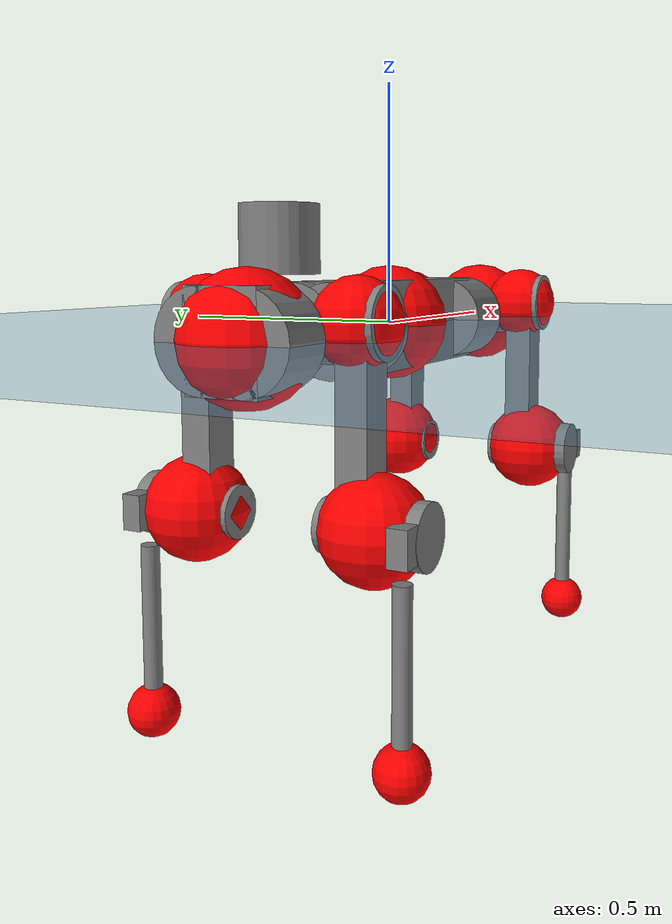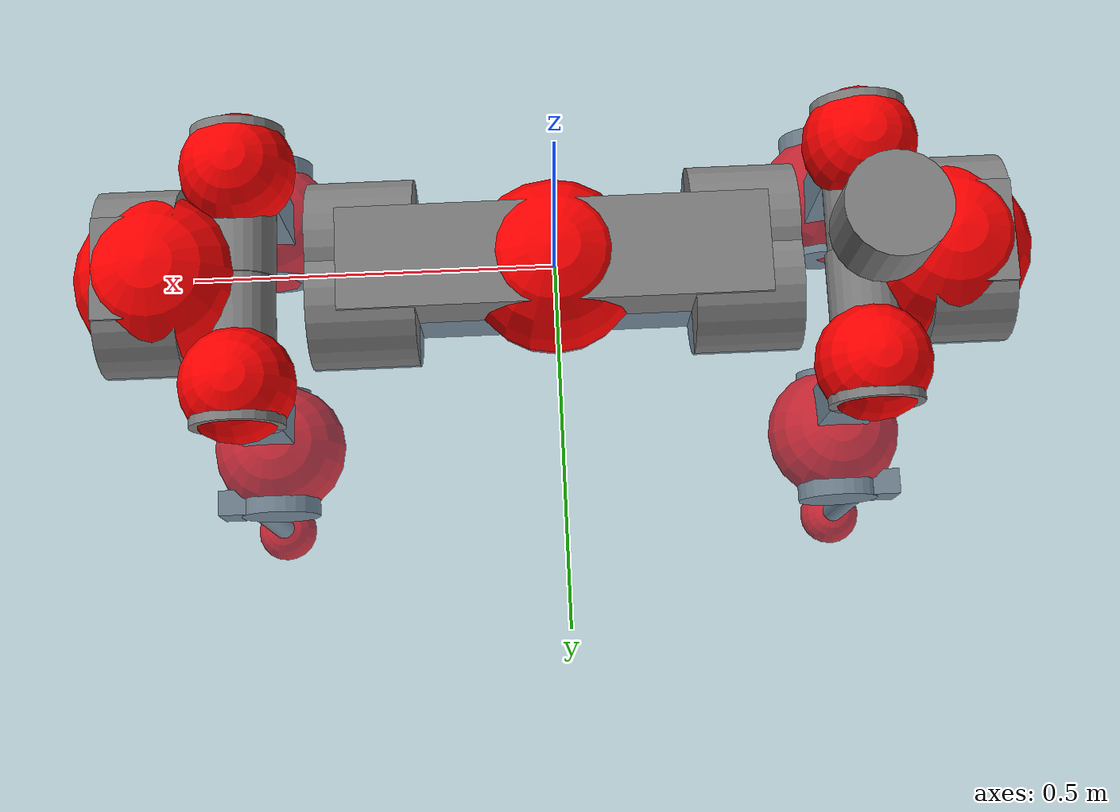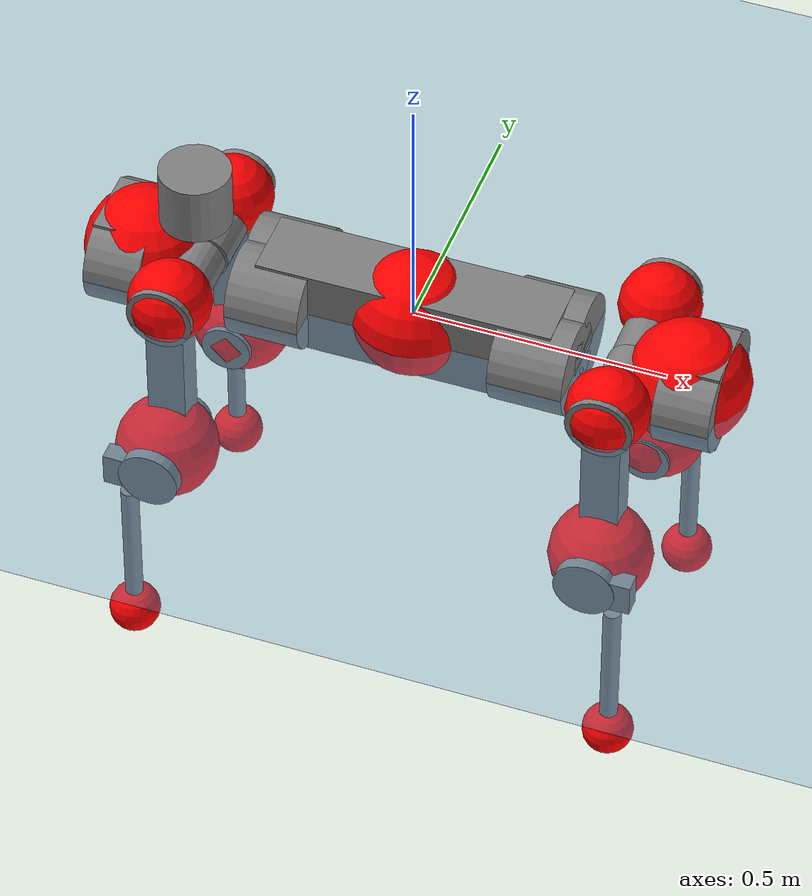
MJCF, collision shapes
<mujoco model="anymal_c">
  <compiler angle="radian" assetdir="assets" balanceinertia="true" inertiafromgeom="false"/>

  <option timestep="0.005" density="1.2" viscosity="2e-05"/>

  <size nkey="1"/>

  <visual>
    <quality shadowsize="8192"/>
    <map shadowclip="0.5"/>
  </visual>

  <default>
    <default class="/">
      <material specular="0" shininess="0.25"/>
      <geom contype="0" conaffinity="0" group="1" solref="-1000 -80"/>
      <site size="0.01 0.005 0.005" group="5"/>
      <general forcelimited="true" forcerange="-80 80" biastype="affine" gainprm="80" biasprm="0 -80 -2"/>
      <default class="anymal_c">
        <joint armature="0.01" damping="0.01" frictionloss="0.1"/>
        <default class="visual">
          <geom type="mesh" group="2"/>
          <default class="visual_zflip"/>
        </default>
        <default class="collision">
          <geom type="cylinder" group="3"/>
          <default class="foot">
            <geom size="0.03 0 0" type="sphere" condim="6" priority="1" friction="0.8 0.02 0.01" solimp="0.015 1 0.03"/>
          </default>
        </default>
      </default>
      <default class="reward_collision_sphere">
        <geom group="5" rgba="1 0 0 1"/>
      </default>
    </default>
  </default>

  <asset>
    <texture type="skybox" colorspace="auto" name="//unnamed_texture_0" builtin="gradient" rgb1="0.95 0.95 0.95" rgb2="0.95 0.95 0.95" width="100" height="600"/>
    <texture type="2d" colorspace="auto" name="texplane" builtin="checker" rgb1="0.345 0.575 0.748" rgb2="0.345 0.575 0.748" markrgb="1 1 1" width="512" height="512"/>
    <texture type="2d" colorspace="linear" name="base" file="base.png"/>
    <texture type="2d" colorspace="linear" name="top_shell" file="top_shell.png"/>
    <texture type="2d" colorspace="linear" name="bottom_shell" file="bottom_shell.png"/>
    <texture type="2d" colorspace="linear" name="remote" file="remote.png"/>
    <texture type="2d" colorspace="linear" name="hatch" file="hatch.png"/>
    <texture type="2d" colorspace="linear" name="handle" file="handle.png"/>
    <texture type="2d" colorspace="linear" name="face" file="face.png"/>
    <texture type="2d" colorspace="linear" name="battery" file="battery.png"/>
    <texture type="2d" colorspace="linear" name="lidar_cage" file="lidar_cage.png"/>
    <texture type="2d" colorspace="linear" name="depth_camera" file="depth_camera.png"/>
    <texture type="2d" colorspace="linear" name="wide_angle_camera" file="wide_angle_camera.png"/>
    <texture type="2d" colorspace="linear" name="lidar" file="lidar.png"/>
    <texture type="2d" colorspace="linear" name="drive" file="drive.png"/>
    <texture type="2d" colorspace="linear" name="hip_l" file="hip_l.png"/>
    <texture type="2d" colorspace="linear" name="shank_l" file="shank_l.png"/>
    <texture type="2d" colorspace="linear" name="foot" file="foot.png"/>
    <texture type="2d" colorspace="linear" name="thigh" file="thigh.png"/>
    <texture type="2d" colorspace="linear" name="shank_r" file="shank_r.png"/>
    <texture type="2d" colorspace="linear" name="hip_r" file="hip_r.png"/>
    <material name="MatPlane" class="/" texture="texplane" texuniform="true" texrepeat="2 2" specular="0.9" shininess="0.5"/>
    <material name="black_plastic" class="/" rgba="0.007 0.007 0.007 1"/>
    <material name="green" class="/" rgba="0.052 0.178 0.033 1"/>
    <material name="red" class="/" rgba="0.178 0.006 0.005 1"/>
    <material name="yellow" class="/" rgba="0.178 0.119 0.006 1"/>
    <material name="lwl" class="/" rgba="0.8 0.8 0.8 1"/>
    <material name="base" class="/" texture="base"/>
    <material name="top_shell" class="/" texture="top_shell"/>
    <material name="bottom_shell" class="/" texture="bottom_shell"/>
    <material name="hip_l" class="/" texture="hip_l"/>
    <material name="thigh" class="/" texture="thigh"/>
    <material name="shank_l" class="/" texture="shank_l"/>
    <material name="foot" class="/" texture="foot"/>
    <material name="hip_r" class="/" texture="hip_r"/>
    <material name="shank" class="/" texture="shank_r"/>
    <material name="hatch" class="/" texture="hatch"/>
    <material name="remote" class="/" texture="remote"/>
    <material name="handle" class="/" texture="handle"/>
    <material name="face" class="/" texture="face"/>
    <material name="depth_camera" class="/" texture="depth_camera"/>
    <material name="wide_angle_camera" class="/" texture="wide_angle_camera"/>
    <material name="battery" class="/" texture="battery"/>
    <material name="lidar_cage" class="/" texture="lidar_cage"/>
    <material name="lidar" class="/" texture="lidar"/>
    <material name="drive" class="/" texture="drive"/>
    <mesh name="base_0" class="/" file="base_0.obj"/>
    <mesh name="base_1" class="/" file="base_1.obj"/>
    <mesh name="base_2" class="/" file="base_2.obj"/>
    <mesh name="base_3" class="/" file="base_3.obj"/>
    <mesh name="base_4" class="/" file="base_4.obj"/>
    <mesh name="base_5" class="/" file="base_5.obj"/>
    <mesh name="top_shell" class="/" file="top_shell.obj"/>
    <mesh name="bottom_shell" class="/" file="bottom_shell.obj"/>
    <mesh name="remote" class="/" file="remote.obj"/>
    <mesh name="handle" class="/" file="handle.obj"/>
    <mesh name="face" class="/" file="face.obj"/>
    <mesh name="wide_angle_camera" class="/" file="wide_angle_camera.obj"/>
    <mesh name="depth_camera" class="/" file="depth_camera.obj"/>
    <mesh name="battery" class="/" file="battery.obj"/>
    <mesh name="lidar_cage" class="/" file="lidar_cage.obj"/>
    <mesh name="lidar" class="/" file="lidar.obj"/>
    <mesh name="drive" class="/" file="drive.obj"/>
    <mesh name="hip_l" class="/" file="hip_l.obj"/>
    <mesh name="thigh" class="/" file="thigh.obj"/>
    <mesh name="shank_l" class="/" file="shank_l.obj"/>
    <mesh name="foot" class="/" file="foot.obj"/>
    <mesh name="hip_r" class="/" file="hip_r.obj"/>
    <mesh name="hatch" class="/" file="hatch.obj"/>
    <mesh name="shank_r" class="/" file="shank_r.obj"/>
  </asset>

  <worldbody>
    <geom name="floor" class="/" size="100 100 0.125" type="plane" group="0" material="MatPlane"/>
    <light name="toplight_shadow" class="/" pos="0 0 5" dir="0.0990148 0.0990148 -0.990148" type="directional" ambient="0.04 0.04 0.04" diffuse="0.55 0.55 0.55" specular="0.12 0.12 0.12"/>
    <light name="toplight_fill" class="/" pos="0 0 5" dir="0.0990148 0.0990148 -0.990148" type="directional" castshadow="false" ambient="0.04 0.04 0.04" diffuse="0.3 0.3 0.3" specular="0.08 0.08 0.08"/>
    <body name="trunk" childclass="anymal_c" pos="0.00180833 0.00064512 0.00122517" quat="0.999999 3.03806e-05 0.000388184 0.000956686">
      <inertial pos="0.00514577 0.00361585 0.0632746" quat="0.50611 0.496154 0.495919 0.501746" mass="19.9801" diaginertia="1.5436 0.0372099 0.606611"/>
      <joint name="//unnamed_joint_0" type="free" armature="0" damping="0" frictionloss="0"/>
      <geom name="//unnamed_geom_1" class="visual" material="green" mesh="base_0"/>
      <geom name="//unnamed_geom_2" class="visual" material="yellow" mesh="base_1"/>
      <geom name="//unnamed_geom_3" class="visual" material="red" mesh="base_2"/>
      <geom name="//unnamed_geom_4" class="visual" material="black_plastic" mesh="base_3"/>
      <geom name="//unnamed_geom_5" class="visual" material="lwl" mesh="base_4"/>
      <geom name="//unnamed_geom_6" class="visual" material="base" mesh="base_5"/>
      <geom name="trunk_1" class="collision" size="0.293057 0.0707378 0.0909487" type="box"/>
      <geom name="trunk_2" class="collision" size="0.0909487 0.0732642" pos="0.261731 0.0403364 0" quat="0.707107 0 0.707107 0"/>
      <geom name="trunk_3" class="collision" size="0.0909487 0.0732642" pos="-0.261731 0.0403364 0" quat="0.707107 0 0.707107 0"/>
      <geom name="trunk_4" class="collision" size="0.0909487 0.0732642" pos="0.261731 -0.0403364 0" quat="0.707107 0 0.707107 0"/>
      <geom name="trunk_5" class="collision" size="0.0909487 0.0732642" pos="-0.261731 -0.0403364 0" quat="0.707107 0 0.707107 0"/>
      <geom name="//unnamed_geom_12" class="visual" material="top_shell" mesh="top_shell"/>
      <geom name="//unnamed_geom_13" class="visual" material="bottom_shell" mesh="bottom_shell"/>
      <geom name="//unnamed_geom_14" class="visual" material="remote" mesh="remote"/>
      <geom name="//unnamed_geom_15" class="visual" material="handle" mesh="handle"/>
      <geom name="//unnamed_geom_16" class="visual" pos="0.498793 0 0" quat="1 0 0 0" material="face" mesh="face"/>
      <geom name="trunk_6" class="collision" size="0.0555797 0.0707378 0.0909487" pos="0.564977 0 0" type="box"/>
      <geom name="//unnamed_geom_18" class="collision" size="0.0909487 0.0555797" pos="0.564977 0.0403364 0" quat="0.707107 0 0.707107 0"/>
      <geom name="//unnamed_geom_19" class="collision" size="0.0909487 0.0555797" pos="0.564977 -0.0403364 0" quat="0.707107 0 0.707107 0"/>
      <geom name="//unnamed_geom_20" class="visual" pos="0.555533 0 -0.0369291" quat="0.965926 0 0.258819 0" material="depth_camera" mesh="depth_camera"/>
      <geom name="//unnamed_geom_21" class="visual" pos="0.617324 0 0.0187429" material="wide_angle_camera" mesh="wide_angle_camera"/>
      <geom name="//unnamed_geom_22" class="visual_zflip" pos="-0.498793 0 0" quat="0 0 0 1" material="face" mesh="face"/>
      <geom name="trunk_7" class="collision" size="0.0555797 0.0707378 0.0909487" pos="-0.564977 0 0" quat="0 0 0 1" type="box"/>
      <geom name="//unnamed_geom_24" class="collision" size="0.0909487 0.0555797" pos="-0.564977 -0.0403364 0" quat="0 -0.707107 0 0.707107"/>
      <geom name="//unnamed_geom_25" class="collision" size="0.0909487 0.0555797" pos="-0.564977 0.0403364 0" quat="0 -0.707107 0 0.707107"/>
      <geom name="//unnamed_geom_26" class="visual" pos="-0.555533 0 -0.0369291" quat="0 -0.258819 0 0.965926" material="depth_camera" mesh="depth_camera"/>
      <geom name="//unnamed_geom_27" class="visual_zflip" pos="-0.617324 0 0.0187429" quat="0 0 0 1" material="wide_angle_camera" mesh="wide_angle_camera"/>
      <geom name="//unnamed_geom_28" class="visual" material="battery" mesh="battery"/>
      <geom name="//unnamed_geom_29" class="visual" pos="0 0.0358318 0.0360015" quat="0.683013 -0.183013 0.183013 0.683013" material="depth_camera" mesh="depth_camera"/>
      <geom name="//unnamed_geom_30" class="visual" pos="0 -0.0358318 0.0360015" quat="0.683013 0.183013 0.183013 -0.683013" material="depth_camera" mesh="depth_camera"/>
      <geom name="//unnamed_geom_31" class="visual" pos="-0.438023 0 0.092024" quat="1 0 0 0" material="lidar_cage" mesh="lidar_cage"/>
      <geom name="trunk_8" class="collision" size="0.0707378 0.0606324" pos="-0.438023 0 0.167146"/>
      <geom name="//unnamed_geom_33" class="visual" pos="-0.438023 -0.00024638 0.178038" quat="0.707107 0 0 -0.707107" material="lidar" mesh="lidar"/>
      <geom name="//unnamed_geom_34" class="visual" pos="0.360888 0.0601685 -1.16575e-08" quat="0.258819 0.965926 0 0" material="drive" mesh="drive"/>
      <geom name="//unnamed_geom_35" class="visual" pos="0.360888 -0.0601685 1.16575e-08" quat="0.258819 -0.965926 0 0" material="drive" mesh="drive"/>
      <geom name="//unnamed_geom_36" class="visual" pos="-0.360888 0.0601685 1.16575e-08" quat="0 0 0.965926 -0.258819" material="drive" mesh="drive"/>
      <geom name="//unnamed_geom_37" class="visual" pos="-0.360888 -0.0601685 -1.16575e-08" quat="0 0 -0.965926 -0.258819" material="drive" mesh="drive"/>
      <geom name="//unnamed_geom_38" class="visual" pos="0.13959 0 0.091398" quat="1 0 0 0" material="hatch" mesh="hatch"/>
      <geom name="//unnamed_geom_39" class="reward_collision_sphere" size="0.121265"/>
      <geom name="//unnamed_geom_40" class="reward_collision_sphere" size="0.121265" pos="0.541512 0 0"/>
      <geom name="//unnamed_geom_41" class="reward_collision_sphere" size="0.121265" pos="-0.541512 0 0"/>
      <site name="imu" pos="0.327312 -0.00660291 0.040109" size="0.0101054"/>
      <camera name="track" pos="0 -1.15247 0" quat="0.707107 0.707107 0 0" mode="trackcom"/>
      <camera name="ego_camera" pos="0.541512 0 -0.0500811" quat="-0.5 -0.5 0.5 0.5"/>
      <body name="LF_HIP" pos="0.36383 0.0585085 -0.000442851" quat="0.258717 0.965953 -3.74778e-05 -0.000294139">
        <inertial pos="0.0644149 -0.00935946 -0.0118807" quat="-0.127709 0.710083 -0.134357 0.67928" mass="2.98102" diaginertia="0.0154196 0.000310042 0.0102566"/>
        <joint name="LF_HAA" pos="0 0 0" axis="0.999964 -0.00289465 0.00798011" range="-0.749947 0.491706" armature="0.00765426" damping="0.032084" frictionloss="0.0885872"/>
        <geom name="//unnamed_geom_42" class="visual" pos="0 -0.000685758 0.000112635" quat="0.258819 -0.965926 0 0" material="hip_l" mesh="hip_l"/>
        <geom name="//unnamed_geom_43" class="visual" pos="0.0720813 -0.0793248 -0.0507967" quat="0.183013 -0.683013 0.683013 0.183013" material="drive" mesh="drive"/>
        <geom name="//unnamed_geom_44" class="collision" size="0.050527 0.0707378" pos="0.0720812 -0.00689165 -0.00864525" quat="-0.353553 -0.612372 0.612372 -0.353553"/>
        <body name="LF_THIGH" pos="0.0721145 -0.0442176 -0.0534785" quat="0.183701 -0.682728 0.683279 0.182389">
          <inertial pos="0.0385327 0.000813908 -0.311658" quat="0.993198 -0.0101953 -0.07277 0.0903224" mass="3.20566" diaginertia="0.0815398 0.00192455 0.0126866"/>
          <joint name="LF_HFE" pos="0 0 0" axis="0.999626 0.00807574 0.0261239" stiffness="0.0118794" range="-3.19306 3.18982" armature="0.0112025" damping="0" frictionloss="0.119088"/>
          <geom name="//unnamed_geom_45" class="visual" pos="0.0124773 1.96613e-05 0" quat="0.707107 0 0 -0.707107" material="thigh" mesh="thigh"/>
          <geom name="//unnamed_geom_46" class="collision" size="0.0656851 0.0404216" pos="0.0481344 0 0" quat="0.5 0.5 -0.5 -0.5"/>
          <geom name="//unnamed_geom_47" class="collision" size="0.0378953 0.0303162 0.142804" pos="0.0361008 0 -0.176929" quat="0.707107 0 0 -0.707107" type="box"/>
          <geom name="//unnamed_geom_48" class="visual" pos="0.120697 0 -0.356828" quat="1 0 0 0" material="drive" mesh="drive"/>
          <geom name="//unnamed_geom_49" class="collision" size="0.050527 0.0707378" pos="0.0364618 0 -0.356828" quat="0.707107 0 0.707107 0"/>
          <geom name="//unnamed_geom_50" class="reward_collision_sphere" size="0.0808433" pos="0.030084 0 0"/>
          <body name="LF_SHANK" pos="0.118093 0.00281497 -0.351332" quat="0.999999 -0.000308872 0.000313764 -0.00118285">
            <inertial pos="0.0043004 -0.0356102 -0.103254" quat="0.991574 -0.127207 -0.00305168 -0.0242721" mass="0.598663" diaginertia="0.0256703 0.000590904 0.00332798"/>
            <joint name="LF_KFE" pos="0 0 0" axis="0.999959 -0.000441745 -0.00901279" range="-3.12281 3.16887" armature="0.0104471" damping="0.0211761" frictionloss="0.0982268"/>
            <geom name="//unnamed_geom_51" class="visual" pos="0.00406858 0.0216939 0" quat="0.707107 0 0 -0.707107" material="shank_l" mesh="shank_l"/>
            <geom name="LF_kfe_act" class="collision" size="0.0606324 0.0202108" pos="0.0240672 0 0" quat="0.5 0.5 -0.5 -0.5"/>
            <geom name="//unnamed_geom_53" class="collision" size="0.0581051 0.0341057 0.0192003" pos="0.0240672 -0.0331329 0" quat="0.5 0.5 -0.5 -0.5" type="box"/>
            <geom name="//unnamed_geom_54" class="visual" pos="0.0157029 -0.0436888 -0.423148" quat="0.382683 0 0 -0.92388" material="foot" mesh="foot"/>
            <geom name="LF_calf" class="collision" size="0.0176845 0.142741" pos="0.0157038 -0.0506799 -0.211574" quat="0.707107 0 0 -0.707107"/>
            <geom name="LF_foot" class="foot" size="0.0260963" pos="0.0157038 -0.0506799 -0.394977" quat="0.707107 0 0 -0.707107"/>
            <geom name="//unnamed_geom_57" class="reward_collision_sphere" size="0.101054" pos="-0.060168 0 0"/>
            <geom name="//unnamed_geom_58" class="reward_collision_sphere" size="0.050527" pos="0.0157038 -0.0506799 -0.394977"/>
            <site name="LF_foot" class="foot" pos="0.0157038 -0.0506799 -0.394977" quat="0.707107 0 0 -0.707107" size="0.0101054"/>
          </body>
        </body>
      </body>
      <body name="RF_HIP" pos="0.361808 -0.0602237 0.00172236" quat="0.258539 -0.966001 6.40531e-05 -0.0002037">
        <inertial pos="0.0648847 0.00728924 -0.00885365" quat="0.134384 0.679292 0.127579 0.710089" mass="2.76815" diaginertia="0.014489 0.00031093 0.0100439"/>
        <joint name="RF_HAA" pos="0 0 0" axis="0.999956 0.00104366 -0.00934834" range="-0.410916 0.766023" armature="0.0117979" damping="0.0140298" frictionloss="0.119681"/>
        <geom name="//unnamed_geom_59" class="visual" pos="0 0.000685752 0.000112635" quat="0.258819 0.965926 0 0" material="hip_r" mesh="hip_r"/>
        <geom name="//unnamed_geom_60" class="visual" pos="0.0720812 0.0793248 -0.0507967" quat="0.183013 0.683013 0.683013 -0.183013" material="drive" mesh="drive"/>
        <geom name="//unnamed_geom_61" class="collision" size="0.050527 0.0707378" pos="0.0720812 0.00689165 -0.00864525" quat="-0.353553 0.612372 0.612372 0.353553"/>
        <body name="RF_THIGH" pos="0.0711211 0.0374479 -0.0534816" quat="0.18371 0.682676 0.683305 -0.18248">
          <inertial pos="0.0378172 0.00244422 -0.309606" quat="0.991073 -0.0142835 -0.0856819 0.101141" mass="3.43496" diaginertia="0.0800954 0.00193275 0.0133514"/>
          <joint name="RF_HFE" pos="0 0 0" axis="0.999944 0.010463 0.00129426" stiffness="0.00444563" range="-3.24957 3.1229" armature="0.00974559" damping="0.0143865" frictionloss="0.0680105"/>
          <geom name="//unnamed_geom_62" class="visual" pos="0.0124773 1.96613e-05 0" quat="0.707107 0 0 -0.707107" material="thigh" mesh="thigh"/>
          <geom name="//unnamed_geom_63" class="collision" size="0.0656851 0.0404216" pos="0.0481344 0 0" quat="0.5 0.5 0.5 0.5"/>
          <geom name="//unnamed_geom_64" class="collision" size="0.0378953 0.0303162 0.142804" pos="0.0361008 0 -0.176929" quat="0.707107 0 0 0.707107" type="box"/>
          <geom name="//unnamed_geom_65" class="visual" pos="0.120697 0 -0.356828" quat="1 0 0 0" material="drive" mesh="drive"/>
          <geom name="//unnamed_geom_66" class="collision" size="0.050527 0.0707378" pos="0.0364618 0 -0.356828" quat="0.707107 0 0.707107 0"/>
          <geom name="//unnamed_geom_67" class="reward_collision_sphere" size="0.0808433" pos="0.030084 0 0"/>
          <body name="RF_SHANK" pos="0.117128 0.00446072 -0.354936" quat="1 -0.000332236 0.00066647 0.000222921">
            <inertial pos="0.00760251 0.0341883 -0.105278" quat="0.992938 0.115935 -0.00107834 0.0251459" mass="0.592026" diaginertia="0.0274729 0.000607753 0.00351169"/>
            <joint name="RF_KFE" pos="0 0 0" axis="1 -0.000170186 -0.000779628" range="-3.13555 3.12644" armature="0.00909173" damping="0.0186345" frictionloss="0.126323"/>
            <geom name="//unnamed_geom_68" class="visual" pos="0.00406856 -0.0216938 0" quat="0.707107 0 0 0.707107" material="shank" mesh="shank_r"/>
            <geom name="RF_kfe_act" class="collision" size="0.0606324 0.0202108" pos="0.0240672 0 0" quat="0.5 0.5 0.5 0.5"/>
            <geom name="//unnamed_geom_70" class="collision" size="0.0581051 0.0341057 0.0192003" pos="0.0240672 0.0331329 0" quat="0.5 0.5 0.5 0.5" type="box"/>
            <geom name="//unnamed_geom_71" class="visual" pos="0.0157048 0.0436888 -0.423148" quat="0.382683 0 0 0.92388" material="foot" mesh="foot"/>
            <geom name="RF_calf" class="collision" size="0.0176845 0.142741" pos="0.0157038 0.0506799 -0.211574" quat="0.707107 0 0 0.707107"/>
            <geom name="RF_foot" class="foot" size="0.0374812" pos="0.0157038 0.0506799 -0.394977" quat="0.707107 0 0 0.707107"/>
            <geom name="//unnamed_geom_74" class="reward_collision_sphere" size="0.101054" pos="-0.060168 0 0"/>
            <geom name="//unnamed_geom_75" class="reward_collision_sphere" size="0.050527" pos="0.0157038 0.0506799 -0.394977"/>
            <site name="RF_foot" class="foot" pos="0.0157038 0.0506799 -0.394977" quat="0.707107 0 0 0.707107" size="0.0101054"/>
          </body>
        </body>
      </body>
      <body name="LH_HIP" pos="-0.35552 0.061484 0.00215693" quat="0.00103118 0.000223944 0.966112 -0.258121">
        <inertial pos="0.0693434 0.00472784 -0.00920452" quat="0.135207 0.679195 0.126274 0.710259" mass="2.91197" diaginertia="0.0150009 0.000303847 0.0109823"/>
        <joint name="LH_HAA" pos="0 0 0" axis="0.99995 -0.00511369 0.00863602" range="-0.460277 0.851511" armature="0.0122192" damping="0.00388786" frictionloss="0.0966707"/>
        <geom name="//unnamed_geom_76" class="visual" pos="0 0.000685752 0.000112635" quat="-0.258819 -0.965926 0 0" material="hip_r" mesh="hip_r"/>
        <geom name="//unnamed_geom_77" class="visual" pos="0.0720812 0.0793248 -0.0507967" quat="0.183013 0.683013 0.683013 -0.183013" material="drive" mesh="drive"/>
        <geom name="//unnamed_geom_78" class="collision" size="0.050527 0.0707378" pos="0.0720812 0.00689165 -0.00864525" quat="-0.353553 0.612372 0.612372 0.353553"/>
        <body name="LH_THIGH" pos="0.0726009 0.0481209 -0.0556744" quat="0.18322 0.682895 0.683087 -0.182968">
          <inertial pos="0.0374184 -0.00258187 -0.30977" quat="0.993197 -0.0116264 -0.0805189 0.0833118" mass="3.17087" diaginertia="0.0766245 0.00191266 0.0132579"/>
          <joint name="LH_HFE" pos="0 0 0" axis="0.999908 0.0101623 0.00903532" range="-3.15178 3.09714" armature="0.00978737" damping="0.00131257" frictionloss="0.110171"/>
          <geom name="//unnamed_geom_79" class="visual" pos="0.0124773 1.96613e-05 0" quat="0.707107 0 0 -0.707107" material="thigh" mesh="thigh"/>
          <geom name="//unnamed_geom_80" class="collision" size="0.0656851 0.0404216" pos="0.0481344 0 0" quat="0.5 0.5 -0.5 -0.5"/>
          <geom name="//unnamed_geom_81" class="collision" size="0.0378953 0.0303162 0.142804" pos="0.0361008 0 -0.176929" quat="0.707107 0 0 -0.707107" type="box"/>
          <geom name="//unnamed_geom_82" class="visual" pos="0.120697 0 -0.356828" quat="1 0 0 0" material="drive" mesh="drive"/>
          <geom name="//unnamed_geom_83" class="collision" size="0.050527 0.0707378" pos="0.0364618 0 -0.356828" quat="0.707107 0 0.707107 0"/>
          <geom name="//unnamed_geom_84" class="reward_collision_sphere" size="0.0808433" pos="0.030084 0 0"/>
          <body name="LH_SHANK" pos="0.121656 -0.000301189 -0.358371" quat="1 0.000359946 -0.000526131 0.000427989">
            <inertial pos="0.00644743 0.0348125 -0.100903" quat="0.988714 0.144742 -0.00173038 0.038619" mass="0.599587" diaginertia="0.0258653 0.000597389 0.00365458"/>
            <joint name="LH_KFE" pos="0 0 0" axis="0.999959 0.00671027 0.00601463" stiffness="0.00238006" range="-3.12464 3.1487" armature="0.0110561" damping="0.00816332" frictionloss="0.0970631"/>
            <geom name="//unnamed_geom_85" class="visual" pos="0.00406856 -0.0216938 0" quat="-0.707107 0 0 -0.707107" material="shank" mesh="shank_r"/>
            <geom name="LH_kfe_act" class="collision" size="0.0606324 0.0202108" pos="0.0240672 0 0" quat="0.5 0.5 -0.5 -0.5"/>
            <geom name="//unnamed_geom_87" class="collision" size="0.0581051 0.0341057 0.0192003" pos="0.0240672 0.0331329 0" quat="0.5 0.5 -0.5 -0.5" type="box"/>
            <geom name="//unnamed_geom_88" class="visual" pos="0.0157048 0.0436888 -0.423148" quat="-0.382683 0 0 -0.92388" material="foot" mesh="foot"/>
            <geom name="LH_calf" class="collision" size="0.0176845 0.142741" pos="0.0157038 0.0506799 -0.211574" quat="0.707107 0 0 -0.707107"/>
            <geom name="LH_foot" class="foot" size="0.021027" pos="0.0157038 0.0506799 -0.394977" quat="0.707107 0 0 -0.707107"/>
            <geom name="//unnamed_geom_91" class="reward_collision_sphere" size="0.101054" pos="-0.060168 0 0"/>
            <geom name="//unnamed_geom_92" class="reward_collision_sphere" size="0.050527" pos="0.0157038 0.0506799 -0.394977"/>
            <site name="LH_foot" class="foot" pos="0.0157038 0.0506799 -0.394977" quat="0.707107 0 0 -0.707107" size="0.0101054"/>
          </body>
        </body>
      </body>
      <body name="RH_HIP" pos="-0.360562 -0.0558279 -0.00131662" quat="8.63026e-05 -0.000979387 -0.965881 -0.258984">
        <inertial pos="0.0724617 -0.00886623 -0.013677" quat="-0.134681 0.708935 -0.144065 0.677139" mass="2.85914" diaginertia="0.0145366 0.000308812 0.0106776"/>
        <joint name="RH_HAA" pos="0 0 0" axis="0.999991 0.00032275 0.0042584" range="-0.662407 0.383943" armature="0.0108041" damping="0.0140749" frictionloss="0.0970564"/>
        <geom name="//unnamed_geom_93" class="visual" pos="0 -0.000685758 0.000112635" quat="-0.258819 0.965926 0 0" material="hip_l" mesh="hip_l"/>
        <geom name="//unnamed_geom_94" class="visual" pos="0.0720813 -0.0793248 -0.0507967" quat="-0.183013 0.683013 -0.683013 -0.183013" material="drive" mesh="drive"/>
        <geom name="//unnamed_geom_95" class="collision" size="0.050527 0.0707378" pos="0.0720812 -0.00689165 -0.00864525" quat="0.353553 0.612372 -0.612372 0.353553"/>
        <body name="RH_THIGH" pos="0.0739285 -0.0426245 -0.0566503" quat="-0.182919 0.683009 -0.68308 -0.18287">
          <inertial pos="0.0357846 -0.00262761 -0.305224" quat="0.993062 -0.00496535 -0.0801492 0.0859036" mass="3.63118" diaginertia="0.085379 0.00206222 0.0142787"/>
          <joint name="RH_HFE" pos="0 0 0" axis="0.999918 0.0127954 0.000458193" range="-3.11507 3.12842" armature="0.00940037" damping="0" frictionloss="0.0973437"/>
          <geom name="//unnamed_geom_96" class="visual" pos="0.0124773 1.96613e-05 0" quat="0.707107 0 0 -0.707107" material="thigh" mesh="thigh"/>
          <geom name="//unnamed_geom_97" class="collision" size="0.0656851 0.0404216" pos="0.0481344 0 0" quat="0.5 0.5 0.5 0.5"/>
          <geom name="//unnamed_geom_98" class="collision" size="0.0378953 0.0303162 0.142804" pos="0.0361008 0 -0.176929" quat="0.707107 0 0 0.707107" type="box"/>
          <geom name="//unnamed_geom_99" class="visual" pos="0.120697 0 -0.356828" quat="1 0 0 0" material="drive" mesh="drive"/>
          <geom name="//unnamed_geom_100" class="collision" size="0.050527 0.0707378" pos="0.0364618 0 -0.356828" quat="0.707107 0 0.707107 0"/>
          <geom name="//unnamed_geom_101" class="reward_collision_sphere" size="0.0808433" pos="0.030084 0 0"/>
          <body name="RH_SHANK" pos="0.124558 -0.00269457 -0.354887" quat="1 1.06571e-05 -0.000213763 -0.00012021">
            <inertial pos="0.00520022 -0.0348639 -0.0996734" quat="0.993815 -0.110058 0.00566501 -0.0136637" mass="0.636008" diaginertia="0.0261353 0.000578352 0.00354958"/>
            <joint name="RH_KFE" pos="0 0 0" axis="0.999721 -0.0236119 -0.00108437" range="-3.1663 3.09642" armature="0.01262" damping="0.0180182" frictionloss="0.102487"/>
            <geom name="//unnamed_geom_102" class="visual" pos="0.00406858 0.0216939 0" quat="0.707107 0 0 -0.707107" material="shank_l" mesh="shank_l"/>
            <geom name="RH_kfe_act" class="collision" size="0.0606324 0.0202108" pos="0.0240672 0 0" quat="0.5 0.5 0.5 0.5"/>
            <geom name="//unnamed_geom_104" class="collision" size="0.0581051 0.0341057 0.0192003" pos="0.0240672 -0.0331329 0" quat="0.5 0.5 0.5 0.5" type="box"/>
            <geom name="//unnamed_geom_105" class="visual" pos="0.0157029 -0.0436888 -0.423148" quat="0.382683 0 0 -0.92388" material="foot" mesh="foot"/>
            <geom name="RH_calf" class="collision" size="0.0176845 0.142741" pos="0.0157038 -0.0506799 -0.211574" quat="0.707107 0 0 0.707107"/>
            <geom name="RH_foot" class="foot" size="0.0311075" pos="0.0157038 -0.0506799 -0.394977" quat="0.707107 0 0 0.707107"/>
            <geom name="//unnamed_geom_108" class="reward_collision_sphere" size="0.101054" pos="-0.060168 0 0"/>
            <geom name="//unnamed_geom_109" class="reward_collision_sphere" size="0.050527" pos="0.0157038 -0.0506799 -0.394977"/>
            <site name="RH_foot" class="foot" pos="0.0157038 -0.0506799 -0.394977" quat="0.707107 0 0 0.707107" size="0.0101054"/>
          </body>
        </body>
      </body>
    </body>
  </worldbody>

  <contact>
    <pair class="/" geom1="floor" geom2="LF_foot" name="//unnamed_contact_0"/>
    <pair class="/" geom1="floor" geom2="RF_foot" name="//unnamed_contact_1"/>
    <pair class="/" geom1="floor" geom2="LH_foot" name="//unnamed_contact_2"/>
    <pair class="/" geom1="floor" geom2="RH_foot" name="//unnamed_contact_3"/>
  </contact>

  <actuator>
    <general name="LF_HAA" class="/" joint="LF_HAA" forcerange="-74.915 74.915" gainprm="60.2499" biasprm="0 -60.2499 -1.97396"/>
    <general name="LF_HFE" class="/" joint="LF_HFE" forcerange="-80.6643 80.6643" gainprm="60.2499" biasprm="0 -60.2499 -1.97396"/>
    <general name="LF_KFE" class="/" joint="LF_KFE" forcerange="-77.0586 77.0586" gainprm="60.2499" biasprm="0 -60.2499 -1.97396"/>
    <general name="RF_HAA" class="/" joint="RF_HAA" forcerange="-82.4702 82.4702" gainprm="60.2499" biasprm="0 -60.2499 -1.97396"/>
    <general name="RF_HFE" class="/" joint="RF_HFE" forcerange="-84.8923 84.8923" gainprm="60.2499" biasprm="0 -60.2499 -1.97396"/>
    <general name="RF_KFE" class="/" joint="RF_KFE" forcerange="-91.1324 91.1324" gainprm="60.2499" biasprm="0 -60.2499 -1.97396"/>
    <general name="LH_HAA" class="/" joint="LH_HAA" forcerange="-80.8744 80.8744" gainprm="60.2499" biasprm="0 -60.2499 -1.97396"/>
    <general name="LH_HFE" class="/" joint="LH_HFE" forcerange="-91.7565 91.7565" gainprm="60.2499" biasprm="0 -60.2499 -1.97396"/>
    <general name="LH_KFE" class="/" joint="LH_KFE" forcerange="-77.7917 77.7917" gainprm="60.2499" biasprm="0 -60.2499 -1.97396"/>
    <general name="RH_HAA" class="/" joint="RH_HAA" forcerange="-75.2806 75.2806" gainprm="60.2499" biasprm="0 -60.2499 -1.97396"/>
    <general name="RH_HFE" class="/" joint="RH_HFE" forcerange="-95.9207 95.9207" gainprm="60.2499" biasprm="0 -60.2499 -1.97396"/>
    <general name="RH_KFE" class="/" joint="RH_KFE" forcerange="-72.483 72.483" gainprm="60.2499" biasprm="0 -60.2499 -1.97396"/>
  </actuator>

  <sensor>
    <gyro site="imu" name="imu_angular_velocity"/>
    <velocimeter site="imu" name="imu_linear_velocity"/>
    <framelinvel objtype="site" objname="LF_foot" name="LF_foot_global_linear_velocity"/>
    <framelinvel objtype="site" objname="RF_foot" name="RF_foot_global_linear_velocity"/>
    <framelinvel objtype="site" objname="LH_foot" name="LH_foot_global_linear_velocity"/>
    <framelinvel objtype="site" objname="RH_foot" name="RH_foot_global_linear_velocity"/>
  </sensor>

  <keyframe>
    <key name="home" qpos="0 0 0.55 1 0 0 0 0 0.4 -0.8 0 -0.4 0.8 0 -0.4 0.8 0 0.4 -0.8"/>
  </keyframe>
</mujoco>
